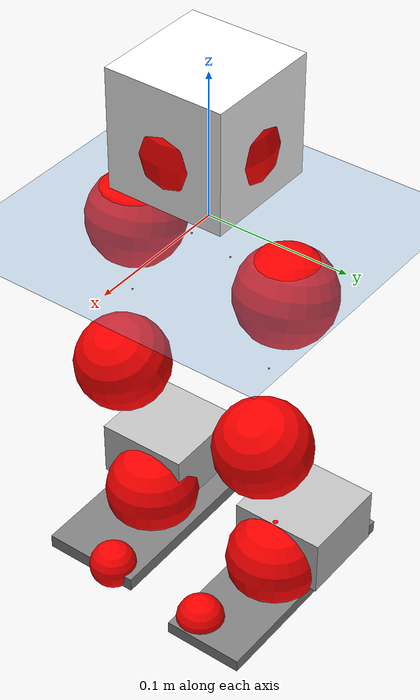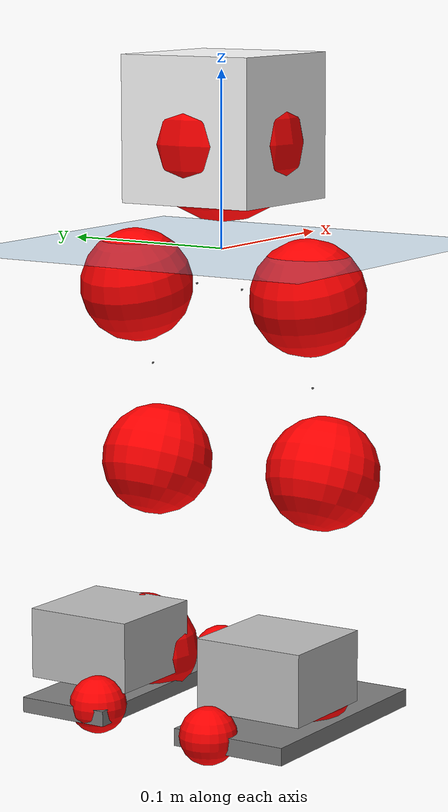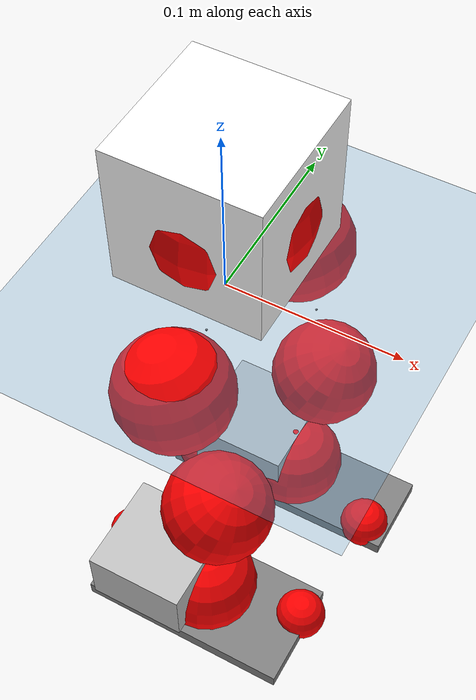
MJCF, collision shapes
<mujoco model="pi_12dof_release_v1">
  <compiler angle="radian" assetdir="assets" balanceinertia="true" inertiafromgeom="false"/>

  <option timestep="0.005" density="1.2" viscosity="2e-05"/>

  <size nkey="1"/>

  <visual>
    <quality shadowsize="8192"/>
    <map shadowclip="0.5"/>
  </visual>

  <default>
    <default class="/">
      <joint armature="0.01" damping="0.01" frictionloss="0.01"/>
      <geom contype="0" conaffinity="0" group="1" solref="-1000 -80"/>
      <site size="0.01 0.005 0.005" group="5"/>
      <general forcelimited="true" biastype="affine" gainprm="20" biasprm="0 -20 -0.5"/>
      <default class="foot">
        <geom size="0.0845 0.036 0.005" type="box" condim="6" group="4" priority="1" friction="0.9 0.2 0.2" solimp="0.015 1 0.005"/>
      </default>
      <default class="reward_collision_sphere">
        <geom group="5" rgba="1 0 0 1"/>
      </default>
    </default>
  </default>

  <asset>
    <texture type="skybox" colorspace="auto" name="//unnamed_texture_0" builtin="gradient" rgb1="0.95 0.95 0.95" rgb2="0.95 0.95 0.95" width="100" height="600"/>
    <texture type="2d" colorspace="auto" name="texplane" builtin="checker" rgb1="0.345 0.575 0.748" rgb2="0.345 0.575 0.748" markrgb="1 1 1" width="512" height="512"/>
    <material name="MatPlane" class="/" texture="texplane" texuniform="true" texrepeat="2 2" specular="0.9"/>
    <mesh name="baselink_1" class="/" file="baselink_1.STL"/>
    <mesh name="r_hip_pitch_link" class="/" file="r_hip_pitch_link.STL"/>
    <mesh name="r_hip_roll_link" class="/" file="r_hip_roll_link.STL"/>
    <mesh name="r_thigh_link" class="/" file="r_thigh_link.STL"/>
    <mesh name="r_calf_link" class="/" file="r_calf_link.STL"/>
    <mesh name="r_ankle_pitch_link" class="/" file="r_ankle_pitch_link.STL"/>
    <mesh name="r_ankle_roll_link" class="/" file="r_ankle_roll_link.STL"/>
    <mesh name="l_hip_pitch_link" class="/" file="l_hip_pitch_link.STL"/>
    <mesh name="l_hip_roll_link" class="/" file="l_hip_roll_link.STL"/>
    <mesh name="l_thigh_link" class="/" file="l_thigh_link.STL"/>
    <mesh name="l_calf_link" class="/" file="l_calf_link.STL"/>
    <mesh name="l_ankle_pitch_link" class="/" file="l_ankle_pitch_link.STL"/>
    <mesh name="l_ankle_roll_link" class="/" file="l_ankle_roll_link.STL"/>
  </asset>

  <worldbody>
    <geom name="floor" class="/" size="100 100 0.125" type="plane" group="0" material="MatPlane"/>
    <light name="toplight_shadow" class="/" pos="0 0 5" dir="0.0990148 0.0990148 -0.990148" type="directional" ambient="0.04 0.04 0.04" diffuse="0.55 0.55 0.55" specular="0.12 0.12 0.12"/>
    <light name="toplight_fill" class="/" pos="0 0 5" dir="0.0990148 0.0990148 -0.990148" type="directional" castshadow="false" ambient="0.04 0.04 0.04" diffuse="0.3 0.3 0.3" specular="0.08 0.08 0.08"/>
    <body name="trunk" pos="0.00229602 -0.000464959 0.00626663" quat="0.999996 -0.00221672 0.0012185 -0.000795241">
      <inertial pos="0.00639894 -0.00406607 0.0326042" quat="0.687829 0.03072 0.0179235 0.725001" mass="1.12886" diaginertia="0.00697595 0.00172487 0.00106129"/>
      <joint name="//unnamed_joint_0" type="free"/>
      <geom name="//unnamed_geom_1" class="/" type="mesh" density="0" rgba="1 1 1 1" mesh="baselink_1"/>
      <geom name="//unnamed_geom_2" class="/" size="0.0410879 0.0410879 0.0410879" pos="0 0 0.061785" type="box" rgba="1 1 1 1"/>
      <geom name="//unnamed_geom_3" class="reward_collision_sphere" size="0.0451967" pos="0 0 0.0540619"/>
      <site name="imu" class="/" pos="0.0116007 -0.00439415 0.0153553" size="0.00821758"/>
      <camera name="track" class="/" pos="0 -1.47164 0" quat="0.707107 0.707107 0 0" mode="trackcom"/>
      <camera name="ego_camera" class="/" pos="0.0717857 0 0.139016" quat="-0.5 -0.5 0.5 0.5"/>
      <body name="r_hip_pitch_link" pos="-0.00519227 -0.0150544 -0.0280742" quat="0.992184 -0.000176086 -0.12478 5.08858e-05">
        <inertial pos="0.0057281 -0.0439311 0.00578934" quat="-0.0228231 0.696103 -0.00205656 0.717576" mass="0.208397" diaginertia="8.52306e-05 2.08656e-05 2.29302e-05"/>
        <joint name="r_hip_pitch_joint" class="/" pos="0 0 0" axis="9.23735e-05 -1 0.000585134" stiffness="0.00296003" range="-1.69224 1.20701" armature="0.00791043" damping="0.0260239" frictionloss="0.00918708"/>
        <geom name="//unnamed_geom_4" class="/" type="mesh" density="0" rgba="0.75294 0.75294 0.75294 1" mesh="r_hip_pitch_link"/>
        <geom name="//unnamed_geom_5" class="/" size="0.000410879 0.000410879 0.000410879" type="box" rgba="0.75294 0.75294 0.75294 1"/>
        <body name="r_hip_roll_link" pos="0.00363325 -0.0407028 -0.00329136" quat="1 0.00032738 0.000436102 5.04809e-05">
          <inertial pos="0.00295223 -0.000712513 -0.0528616" quat="0.709797 -0.0741469 -0.0855726 0.695247" mass="0.233219" diaginertia="0.000290824 6.3084e-05 3.87593e-05"/>
          <joint name="r_hip_roll_joint" class="/" pos="0 0 0" axis="-0.999923 0.0123987 0.000522437" stiffness="0.00157472" range="-0.135456 0.498484" armature="0.0110592" damping="0.0074309" frictionloss="0.00775649"/>
          <geom name="//unnamed_geom_6" class="/" type="mesh" density="0" rgba="0.75294 0.75294 0.75294 1" mesh="r_hip_roll_link"/>
          <geom name="//unnamed_geom_7" class="/" size="0.000410879 0.000410879 0.000410879" type="box" rgba="0.75294 0.75294 0.75294 1"/>
          <geom name="//unnamed_geom_8" class="reward_collision_sphere" size="0.0328703"/>
          <body name="r_thigh_link" pos="-0.00493651 0.00184359 -0.0522871" quat="1 -4.89778e-05 3.63728e-05 -8.60747e-05">
            <inertial pos="0.007709 0.00656864 -0.0381753" quat="0.737819 0.674963 0.00580614 -0.00387707" mass="0.0615422" diaginertia="0.000105235 2.06671e-05 1.57697e-05"/>
            <joint name="r_thigh_joint" class="/" pos="0 0 0" axis="-0.00402704 0.00330391 -0.999986" range="-0.301464 0.512902" armature="0.010676" damping="0" frictionloss="0.00724926"/>
            <geom name="//unnamed_geom_9" class="/" type="mesh" density="0" rgba="0.75294 0.75294 0.75294 1" mesh="r_thigh_link"/>
            <geom name="//unnamed_geom_10" class="/" size="0.000410879 0.000410879 0.000410879" type="box" rgba="0.75294 0.75294 0.75294 1"/>
            <body name="r_calf_link" pos="0.000421197 0.00107344 -0.0529435" quat="0.947019 -0.000324087 0.321167 0.00267925">
              <inertial pos="-0.0016335 -0.000693253 -0.0550261" quat="0.999571 -0.013309 -0.00621546 -0.0253569" mass="0.40647" diaginertia="0.00285182 0.000733825 4.83497e-05"/>
              <joint name="r_calf_joint" class="/" pos="0 0 0" axis="0.0129289 -0.999911 -0.00322628" range="-1.64628 0.641148" armature="0.00835194" damping="0.00938689" frictionloss="0.00905043"/>
              <geom name="//unnamed_geom_11" class="/" type="mesh" density="0" rgba="0.75294 0.75294 0.75294 1" mesh="r_calf_link"/>
              <geom name="//unnamed_geom_12" class="/" size="0.000410879 0.000410879 0.000410879" type="box" rgba="0.75294 0.75294 0.75294 1"/>
              <geom name="//unnamed_geom_13" class="reward_collision_sphere" size="0.0328703"/>
              <body name="r_ankle_pitch_link" pos="-0.00116095 0.00168806 -0.113895" quat="0.980101 -0.000167954 -0.198501 -0.000199899">
                <inertial pos="0.00414488 0.00204725 -0.00181215" quat="0.00893537 0.708263 0.00392046 0.705881" mass="0.0947136" diaginertia="0.000252531 5.02408e-05 3.336e-05"/>
                <joint name="r_ankle_pitch_joint" class="/" pos="0 0 0" axis="-0.0047396 -0.999974 -0.00547477" stiffness="0.00656247" range="-1.28873 0.494254" armature="0.00775609" damping="0" frictionloss="0.00918608"/>
                <geom name="//unnamed_geom_14" class="/" type="mesh" density="0" rgba="0.75294 0.75294 0.75294 1" mesh="r_ankle_pitch_link"/>
                <geom name="//unnamed_geom_15" class="/" size="0.0320486 0.0328703 0.020544" type="box" rgba="0.75294 0.75294 0.75294 1"/>
                <body name="r_ankle_roll_link" pos="0.0779346 0.00736843 -0.00145003" quat="0.999999 -0.000418282 -0.000161258 -0.00108596">
                  <inertial pos="-0.0257599 0.00516526 -0.0147137" quat="0.585906 0.409879 0.425139 0.554951" mass="0.297141" diaginertia="0.000946628 0.000223662 8.42394e-05"/>
                  <joint name="r_ankle_roll_joint" class="/" pos="0 0 0" axis="-0.999951 0.00603802 0.00785058" range="-0.00819536 0.134314" armature="0.00997673" damping="0" frictionloss="0.010444"/>
                  <geom name="//unnamed_geom_16" class="/" type="mesh" density="0" rgba="0.75294 0.75294 0.75294 1" mesh="r_ankle_roll_link"/>
                  <geom name="//unnamed_geom_17" class="/" type="mesh" rgba="0.75294 0.75294 0.75294 1" mesh="r_ankle_roll_link"/>
                  <geom name="right_foot" class="foot" size="0.0696591 0.035051 0.00501835" pos="-0.0488143 0 -0.0339817"/>
                  <geom name="//unnamed_geom_19" class="reward_collision_sphere" size="0.0328703" pos="-0.0478571 0 -0.0154462"/>
                  <geom name="//unnamed_geom_20" class="reward_collision_sphere" size="0.0164352" pos="0.0143571 0.0147164 -0.0308925"/>
                  <geom name="//unnamed_geom_21" class="reward_collision_sphere" size="0.0164352" pos="-0.114857 0.0147164 -0.0308925"/>
                  <site name="right_foot" class="foot" pos="-0.0488143 0 -0.0339817" size="0.00821758"/>
                </body>
              </body>
            </body>
          </body>
        </body>
      </body>
      <body name="l_hip_pitch_link" pos="0.000934992 0.0191538 -0.0276192" quat="0.992126 0.000268351 -0.125243 -0.000255743">
        <inertial pos="-0.000951133 0.0447794 0.00614567" quat="-0.0373367 0.707259 0.033397 0.705178" mass="0.212451" diaginertia="0.000104047 2.31554e-05 2.89888e-05"/>
        <joint name="l_hip_pitch_joint" class="/" pos="0 0 0" axis="-0.0181606 0.999786 0.00986955" stiffness="0.00896394" range="-1.12463 1.75839" armature="0.00834659" damping="0.0171146" frictionloss="0.00807919"/>
        <geom name="//unnamed_geom_22" class="/" type="mesh" density="0" rgba="0.75294 0.75294 0.75294 1" mesh="l_hip_pitch_link"/>
        <geom name="//unnamed_geom_23" class="/" size="0.000410879 0.000410879 0.000410879" type="box" rgba="0.75294 0.75294 0.75294 1"/>
        <body name="l_hip_roll_link" pos="0.00438044 0.0457225 -0.00577105" quat="0.999999 1.64188e-06 -0.000952608 -0.000959635">
          <inertial pos="-0.00862648 0.00260946 -0.040291" quat="0.69973 -0.0744748 -0.0781403 0.706205" mass="0.191985" diaginertia="0.000226534 5.58894e-05 3.12232e-05"/>
          <joint name="l_hip_roll_joint" class="/" pos="0 0 0" axis="-0.999946 -0.00824193 -0.00630416" range="-0.503515 0.130743" armature="0.00908229" damping="0" frictionloss="0.00830447"/>
          <geom name="//unnamed_geom_24" class="/" type="mesh" density="0" rgba="0.75294 0.75294 0.75294 1" mesh="l_hip_roll_link"/>
          <geom name="//unnamed_geom_25" class="/" size="0.000410879 0.000410879 0.000410879" type="box" rgba="0.75294 0.75294 0.75294 1"/>
          <geom name="//unnamed_geom_26" class="reward_collision_sphere" size="0.0328703"/>
          <body name="l_thigh_link" pos="0.0021306 -0.00102976 -0.0499978" quat="0.999999 0.00148581 0.00047178 -0.00023244">
            <inertial pos="0.0061395 -0.00296621 -0.0304072" quat="0.686581 0.726808 0.00974713 -0.016137" mass="0.0654934" diaginertia="0.000102289 2.10468e-05 1.64904e-05"/>
            <joint name="l_thigh_joint" class="/" pos="0 0 0" axis="0.000959261 0.00670785 -0.999977" range="-0.629163 0.237657" armature="0.00757523" damping="0" frictionloss="0.00548541"/>
            <geom name="//unnamed_geom_27" class="/" type="mesh" density="0" rgba="0.75294 0.75294 0.75294 1" mesh="l_thigh_link"/>
            <geom name="//unnamed_geom_28" class="/" size="0.000410879 0.000410879 0.000410879" type="box" rgba="0.75294 0.75294 0.75294 1"/>
            <body name="l_calf_link" pos="-0.00747775 0.00207604 -0.0587429" quat="0.947696 2.34018e-05 0.319174 3.98183e-05">
              <inertial pos="0.00362481 0.00354139 -0.0567822" quat="0.999523 0.0158167 -0.00417571 0.0261904" mass="0.454878" diaginertia="0.00242466 0.000701274 4.39964e-05"/>
              <joint name="l_calf_joint" class="/" pos="0 0 0" axis="0.000602756 1 -0.000118876" stiffness="0.0161441" range="-0.564223 1.5489" armature="0.00896583" damping="0.0111127" frictionloss="0.00758826"/>
              <geom name="//unnamed_geom_29" class="/" type="mesh" density="0" rgba="0.75294 0.75294 0.75294 1" mesh="l_calf_link"/>
              <geom name="//unnamed_geom_30" class="/" size="0.000410879 0.000410879 0.000410879" type="box" rgba="0.75294 0.75294 0.75294 1"/>
              <geom name="//unnamed_geom_31" class="reward_collision_sphere" size="0.0328703"/>
              <body name="l_ankle_pitch_link" pos="-0.00415877 0.00206445 -0.109969" quat="0.980057 -0.00141463 -0.19871 0.000327987">
                <inertial pos="0.0053556 -0.000389458 0.00455807" quat="-0.00245884 0.701264 0.00428108 0.712885" mass="0.103786" diaginertia="0.000229565 4.68792e-05 3.31083e-05"/>
                <joint name="l_ankle_pitch_joint" class="/" pos="0 0 0" axis="-5.57289e-05 1 0.000129443" range="-0.475089 1.34844" armature="0.00799395" damping="0.0405335" frictionloss="0.00952893"/>
                <geom name="//unnamed_geom_32" class="/" type="mesh" density="0" rgba="0.75294 0.75294 0.75294 1" mesh="l_ankle_pitch_link"/>
                <geom name="//unnamed_geom_33" class="/" size="0.0320486 0.0328703 0.020544" type="box" rgba="0.75294 0.75294 0.75294 1"/>
                <body name="l_ankle_roll_link" pos="0.0772597 -0.00281947 0.00369932" quat="0.999993 -0.00215974 -0.00293361 0.000822614">
                  <inertial pos="-0.0231723 1.48076e-05 -0.0126023" quat="0.580156 0.425723 0.422635 0.550962" mass="0.275637" diaginertia="0.000870009 0.000218462 8.18945e-05"/>
                  <joint name="l_ankle_roll_joint" class="/" pos="0 0 0" axis="-0.999999 -0.000647827 0.0011865" range="-0.116329 0.297451" armature="0.00858648" damping="0.0151556" frictionloss="0.0082072"/>
                  <geom name="//unnamed_geom_34" class="/" type="mesh" density="0" rgba="0.75294 0.75294 0.75294 1" mesh="l_ankle_roll_link"/>
                  <geom name="//unnamed_geom_35" class="/" type="mesh" rgba="0.75294 0.75294 0.75294 1" mesh="l_ankle_roll_link"/>
                  <geom name="left_foot" class="foot" size="0.0804715 0.0280101 0.00443323" pos="-0.0488143 0 -0.0339817"/>
                  <geom name="//unnamed_geom_37" class="reward_collision_sphere" size="0.0328703" pos="-0.0478571 0 -0.0154462"/>
                  <geom name="//unnamed_geom_38" class="reward_collision_sphere" size="0.0164352" pos="0.0143571 -0.0147164 -0.0308925"/>
                  <geom name="//unnamed_geom_39" class="reward_collision_sphere" size="0.0164352" pos="-0.114857 -0.0147164 -0.0308925"/>
                  <site name="left_foot" class="foot" pos="-0.0488143 0 -0.0339817" size="0.00821758"/>
                </body>
              </body>
            </body>
          </body>
        </body>
      </body>
    </body>
  </worldbody>

  <contact>
    <pair class="/" geom1="floor" geom2="right_foot" name="//unnamed_contact_1"/>
    <pair class="/" geom1="floor" geom2="left_foot" name="//unnamed_contact_0"/>
  </contact>

  <actuator>
    <general name="r_hip_pitch_joint" class="/" joint="r_hip_pitch_joint" forcerange="-14.5486 14.5486" gainprm="19.4377" biasprm="0 -19.4377 -0.464007"/>
    <general name="r_hip_roll_joint" class="/" joint="r_hip_roll_joint" forcerange="-21.7073 21.7073" gainprm="19.4377" biasprm="0 -19.4377 -0.464007"/>
    <general name="r_thigh_joint" class="/" joint="r_thigh_joint" forcerange="-17.6331 17.6331" gainprm="19.4377" biasprm="0 -19.4377 -0.464007"/>
    <general name="r_calf_joint" class="/" joint="r_calf_joint" forcerange="-12.518 12.518" gainprm="19.4377" biasprm="0 -19.4377 -0.464007"/>
    <general name="r_ankle_pitch_joint" class="/" joint="r_ankle_pitch_joint" forcerange="-16.8877 16.8877" gainprm="19.4377" biasprm="0 -19.4377 -0.464007"/>
    <general name="r_ankle_roll_joint" class="/" joint="r_ankle_roll_joint" forcerange="-21.6023 21.6023" gainprm="19.4377" biasprm="0 -19.4377 -0.464007"/>
    <general name="l_hip_pitch_joint" class="/" joint="l_hip_pitch_joint" forcerange="-17.4228 17.4228" gainprm="19.4377" biasprm="0 -19.4377 -0.464007"/>
    <general name="l_hip_roll_joint" class="/" joint="l_hip_roll_joint" forcerange="-18.7755 18.7755" gainprm="19.4377" biasprm="0 -19.4377 -0.464007"/>
    <general name="l_thigh_joint" class="/" joint="l_thigh_joint" forcerange="-16.7857 16.7857" gainprm="19.4377" biasprm="0 -19.4377 -0.464007"/>
    <general name="l_calf_joint" class="/" joint="l_calf_joint" forcerange="-15.7568 15.7568" gainprm="19.4377" biasprm="0 -19.4377 -0.464007"/>
    <general name="l_ankle_pitch_joint" class="/" joint="l_ankle_pitch_joint" forcerange="-16.9258 16.9258" gainprm="19.4377" biasprm="0 -19.4377 -0.464007"/>
    <general name="l_ankle_roll_joint" class="/" joint="l_ankle_roll_joint" forcerange="-17.1985 17.1985" gainprm="19.4377" biasprm="0 -19.4377 -0.464007"/>
  </actuator>

  <sensor>
    <gyro site="imu" name="imu_angular_velocity"/>
    <velocimeter site="imu" name="imu_linear_velocity"/>
    <framelinvel objtype="site" objname="left_foot" name="left_foot_global_linear_velocity"/>
    <framelinvel objtype="site" objname="right_foot" name="right_foot_global_linear_velocity"/>
  </sensor>

  <keyframe>
    <key name="home" qpos="0 0 0.291 1 0 0 0 0.4 0 0 -0.8 0.4 0 -0.4 0 0 0.8 -0.4 0"/>
  </keyframe>
</mujoco>
